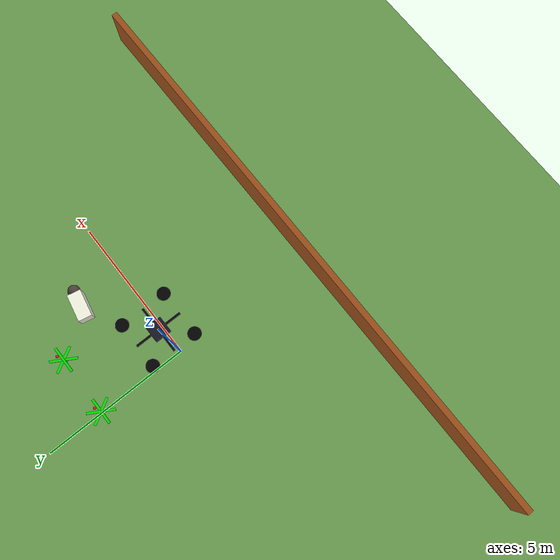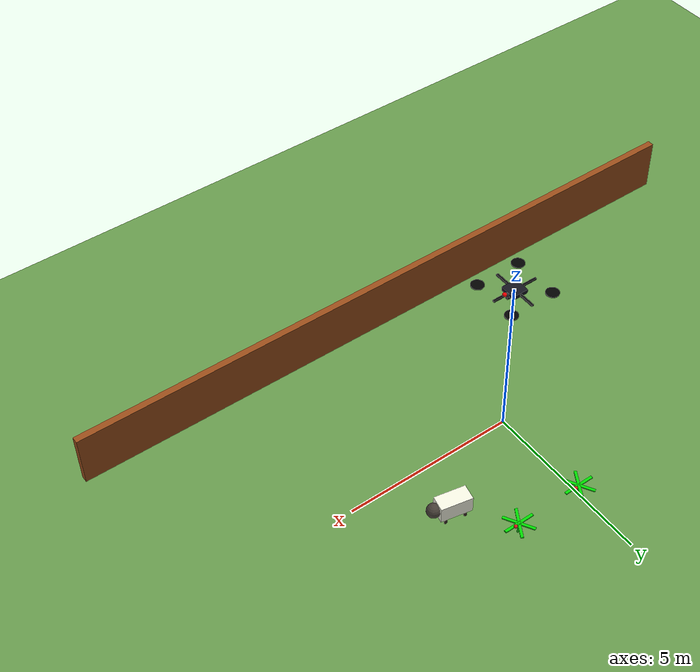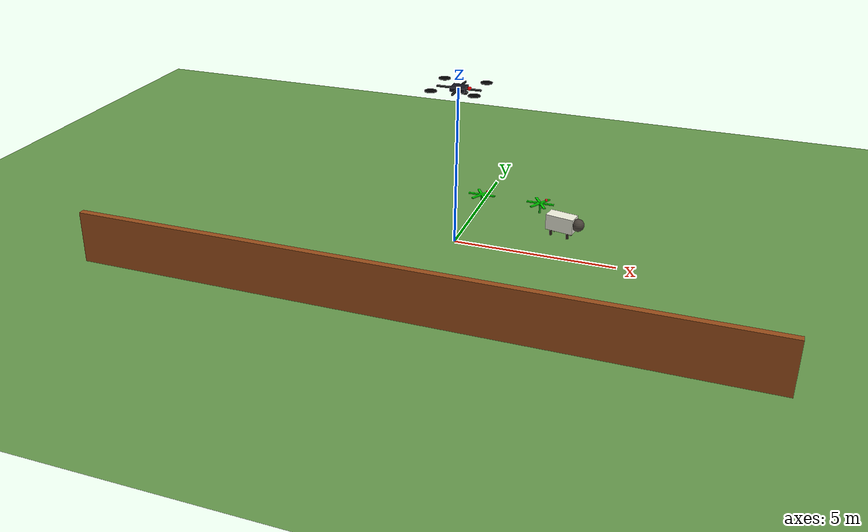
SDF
<sdf version="1.6">
 <world name="enhanced_farm_world">
  <include><uri>model://sun</uri></include>
  <model name="ground_plane">
   <static>true</static>
   <pose>0 0 -0.01 0 0 0</pose>
   <link name="link">
    <collision name="collision">
     <geometry><plane><normal>0 0 1</normal><size>200 200</size></plane></geometry>
     <surface><friction><ode><mu>0.8</mu><mu2>0.8</mu2></ode></friction></surface>
    </collision>
    <visual name="visual">
     <geometry><plane><normal>0 0 1</normal><size>200 200</size></plane></geometry>
     <material>
      <ambient>0.3 0.5 0.2 1</ambient>
      <diffuse>0.4 0.6 0.3 1</diffuse>
      <specular>0.01 0.01 0.01 1</specular>
     </material>
    </visual>
   </link>
  </model>
  <model name="crop_row1_5">
   <static>true</static>
   <pose>0 3 0 0 0 0</pose>
   <link name="crop_stem">
    <pose>0 0 0.15 0 0 0</pose>
    <collision name="collision">
     <geometry><cylinder><radius>0.035</radius><length>0.30</length></cylinder></geometry>
    </collision>
    <visual name="visual">
     <geometry><cylinder><radius>0.035</radius><length>0.30</length></cylinder></geometry>
     <material><ambient>0.05 0.45 0.05 1</ambient><diffuse>0.08 0.65 0.08 1</diffuse></material>
    </visual>
   </link>
   <link name="leaf_1">
    <pose>0 0 0.35 0 0 0</pose>
    <visual name="visual">
     <geometry><box><size>0.90 0.08 0.035</size></box></geometry>
     <material><ambient>0.0 0.55 0.0 1</ambient><diffuse>0.0 0.85 0.0 1</diffuse></material>
    </visual>
   </link>
   <link name="leaf_2">
    <pose>0 0 0.35 0 0 1.047</pose>
    <visual name="visual">
     <geometry><box><size>0.90 0.08 0.035</size></box></geometry>
     <material><ambient>0.0 0.55 0.0 1</ambient><diffuse>0.0 0.85 0.0 1</diffuse></material>
    </visual>
   </link>
   <link name="leaf_3">
    <pose>0 0 0.35 0 0 2.094</pose>
    <visual name="visual">
     <geometry><box><size>0.90 0.08 0.035</size></box></geometry>
     <material><ambient>0.0 0.55 0.0 1</ambient><diffuse>0.0 0.85 0.0 1</diffuse></material>
    </visual>
   </link>
   <link name="small_fruit">
    <pose>0.18 0.08 0.45 0 0 0</pose>
    <visual name="visual">
     <geometry><sphere><radius>0.05</radius></sphere></geometry>
     <material><ambient>0.8 0.05 0.05 1</ambient><diffuse>0.9 0.1 0.1 1</diffuse></material>
    </visual>
   </link>
   <link name="crop_protection_collision">
    <pose>0 0 0.65 0 0 0</pose>
    <collision name="collision">
     <geometry><cylinder><radius>0.30</radius><length>1.30</length></cylinder></geometry>
    </collision>
   </link>
  </model>
  <model name="crop_row1_6">
   <static>true</static>
   <pose>2 3 0 0 0 0</pose>
   <link name="crop_stem">
    <pose>0 0 0.15 0 0 0</pose>
    <collision name="collision">
     <geometry><cylinder><radius>0.035</radius><length>0.30</length></cylinder></geometry>
    </collision>
    <visual name="visual">
     <geometry><cylinder><radius>0.035</radius><length>0.30</length></cylinder></geometry>
     <material><ambient>0.05 0.45 0.05 1</ambient><diffuse>0.08 0.65 0.08 1</diffuse></material>
    </visual>
   </link>
   <link name="leaf_1">
    <pose>0 0 0.35 0 0 0</pose>
    <visual name="visual">
     <geometry><box><size>0.90 0.08 0.035</size></box></geometry>
     <material><ambient>0.0 0.55 0.0 1</ambient><diffuse>0.0 0.85 0.0 1</diffuse></material>
    </visual>
   </link>
   <link name="leaf_2">
    <pose>0 0 0.35 0 0 1.047</pose>
    <visual name="visual">
     <geometry><box><size>0.90 0.08 0.035</size></box></geometry>
     <material><ambient>0.0 0.55 0.0 1</ambient><diffuse>0.0 0.85 0.0 1</diffuse></material>
    </visual>
   </link>
   <link name="leaf_3">
    <pose>0 0 0.35 0 0 2.094</pose>
    <visual name="visual">
     <geometry><box><size>0.90 0.08 0.035</size></box></geometry>
     <material><ambient>0.0 0.55 0.0 1</ambient><diffuse>0.0 0.85 0.0 1</diffuse></material>
    </visual>
   </link>
   <link name="small_fruit">
    <pose>0.18 0.08 0.45 0 0 0</pose>
    <visual name="visual">
     <geometry><sphere><radius>0.05</radius></sphere></geometry>
     <material><ambient>0.8 0.05 0.05 1</ambient><diffuse>0.9 0.1 0.1 1</diffuse></material>
    </visual>
   </link>
   <link name="crop_protection_collision">
    <pose>0 0 0.65 0 0 0</pose>
    <collision name="collision">
     <geometry><cylinder><radius>0.30</radius><length>1.30</length></cylinder></geometry>
    </collision>
   </link>
  </model>
  <model name="fence">
   <static>true</static>
   <pose>0 -5 0.8 0 0 0</pose>
   <link name="link">
    <collision name="collision"><geometry><box><size>20 0.2 1.6</size></box></geometry></collision>
    <visual name="visual">
     <geometry><box><size>20 0.2 1.6</size></box></geometry>
     <material><diffuse>0.6 0.3 0.1 1</diffuse></material>
    </visual>
   </link>
  </model>
  <model name="sheep_1">
   <static>false</static>
   <pose>3.0 1.6 0 0 0 -0.2</pose>
   <link name="body">
    <gravity>false</gravity>
    <kinematic>true</kinematic>
    <collision name="body_collision">
     <pose>0 0 0.45 0 0 0</pose>
     <geometry><box><size>0.9 0.45 0.5</size></box></geometry>
    </collision>
    <visual name="body_visual">
     <pose>0 0 0.45 0 0 0</pose>
     <geometry><box><size>0.9 0.45 0.5</size></box></geometry>
     <material><ambient>0.85 0.85 0.78 1</ambient><diffuse>0.95 0.95 0.88 1</diffuse></material>
    </visual>
    <collision name="head_collision">
     <pose>0.55 0 0.48 0 0 0</pose>
     <geometry><sphere><radius>0.20</radius></sphere></geometry>
    </collision>
    <visual name="head_visual">
     <pose>0.55 0 0.48 0 0 0</pose>
     <geometry><sphere><radius>0.20</radius></sphere></geometry>
     <material><ambient>0.22 0.20 0.18 1</ambient><diffuse>0.28 0.25 0.22 1</diffuse></material>
    </visual>
    <collision name="leg1_collision">
     <pose>-0.28 -0.15 0.18 0 0 0</pose>
     <geometry><cylinder><radius>0.045</radius><length>0.35</length></cylinder></geometry>
    </collision>
    <visual name="leg1_visual">
     <pose>-0.28 -0.15 0.18 0 0 0</pose>
     <geometry><cylinder><radius>0.045</radius><length>0.35</length></cylinder></geometry>
     <material><ambient>0.15 0.12 0.10 1</ambient><diffuse>0.18 0.14 0.11 1</diffuse></material>
    </visual>
    <collision name="leg2_collision">
     <pose>-0.28 0.15 0.18 0 0 0</pose>
     <geometry><cylinder><radius>0.045</radius><length>0.35</length></cylinder></geometry>
    </collision>
    <visual name="leg2_visual">
     <pose>-0.28 0.15 0.18 0 0 0</pose>
     <geometry><cylinder><radius>0.045</radius><length>0.35</length></cylinder></geometry>
     <material><ambient>0.15 0.12 0.10 1</ambient><diffuse>0.18 0.14 0.11 1</diffuse></material>
    </visual>
    <collision name="leg3_collision">
     <pose>0.28 -0.15 0.18 0 0 0</pose>
     <geometry><cylinder><radius>0.045</radius><length>0.35</length></cylinder></geometry>
    </collision>
    <visual name="leg3_visual">
     <pose>0.28 -0.15 0.18 0 0 0</pose>
     <geometry><cylinder><radius>0.045</radius><length>0.35</length></cylinder></geometry>
     <material><ambient>0.15 0.12 0.10 1</ambient><diffuse>0.18 0.14 0.11 1</diffuse></material>
    </visual>
    <collision name="leg4_collision">
     <pose>0.28 0.15 0.18 0 0 0</pose>
     <geometry><cylinder><radius>0.045</radius><length>0.35</length></cylinder></geometry>
    </collision>
    <visual name="leg4_visual">
     <pose>0.28 0.15 0.18 0 0 0</pose>
     <geometry><cylinder><radius>0.045</radius><length>0.35</length></cylinder></geometry>
     <material><ambient>0.15 0.12 0.10 1</ambient><diffuse>0.18 0.14 0.11 1</diffuse></material>
    </visual>
   </link>
  </model>
  <model name="uav_scout_drone">
   <static>true</static>
   <pose>0 0 5.0 0 0 0</pose>
   <link name="body">
    <visual name="body_visual">
     <geometry><box><size>0.45 0.45 0.12</size></box></geometry>
     <material><ambient>0.05 0.05 0.08 1</ambient><diffuse>0.08 0.08 0.12 1</diffuse></material>
    </visual>
    <collision name="body_collision"><geometry><box><size>0.45 0.45 0.12</size></box></geometry></collision>
    <visual name="front_marker">
     <pose>0.32 0 0.02 0 0 0</pose>
     <geometry><sphere><radius>0.06</radius></sphere></geometry>
     <material><ambient>1 0 0 1</ambient><diffuse>1 0 0 1</diffuse></material>
    </visual>
    <visual name="arm_x_visual">
     <geometry><box><size>1.35 0.06 0.05</size></box></geometry>
     <material><ambient>0.02 0.02 0.02 1</ambient><diffuse>0.02 0.02 0.02 1</diffuse></material>
    </visual>
    <visual name="arm_y_visual">
     <geometry><box><size>0.06 1.35 0.05</size></box></geometry>
     <material><ambient>0.02 0.02 0.02 1</ambient><diffuse>0.02 0.02 0.02 1</diffuse></material>
    </visual>
    <visual name="rotor_1_visual">
     <pose>0.65 0.65 0.04 0 0 0</pose>
     <geometry><cylinder><radius>0.18</radius><length>0.025</length></cylinder></geometry>
     <material><ambient>0.0 0.0 0.0 1</ambient><diffuse>0.0 0.0 0.0 1</diffuse></material>
    </visual>
    <visual name="rotor_2_visual">
     <pose>0.65 -0.65 0.04 0 0 0</pose>
     <geometry><cylinder><radius>0.18</radius><length>0.025</length></cylinder></geometry>
     <material><ambient>0.0 0.0 0.0 1</ambient><diffuse>0.0 0.0 0.0 1</diffuse></material>
    </visual>
    <visual name="rotor_3_visual">
     <pose>-0.65 0.65 0.04 0 0 0</pose>
     <geometry><cylinder><radius>0.18</radius><length>0.025</length></cylinder></geometry>
     <material><ambient>0.0 0.0 0.0 1</ambient><diffuse>0.0 0.0 0.0 1</diffuse></material>
    </visual>
    <visual name="rotor_4_visual">
     <pose>-0.65 -0.65 0.04 0 0 0</pose>
     <geometry><cylinder><radius>0.18</radius><length>0.025</length></cylinder></geometry>
     <material><ambient>0.0 0.0 0.0 1</ambient><diffuse>0.0 0.0 0.0 1</diffuse></material>
    </visual>
    <visual name="camera_visual">
     <pose>0.18 0 -0.12 0 0 0</pose>
     <geometry><box><size>0.16 0.10 0.08</size></box></geometry>
     <material><ambient>0.1 0.1 0.1 1</ambient><diffuse>0.1 0.1 0.1 1</diffuse></material>
    </visual>
   </link>
  </model>
 </world>
</sdf>
